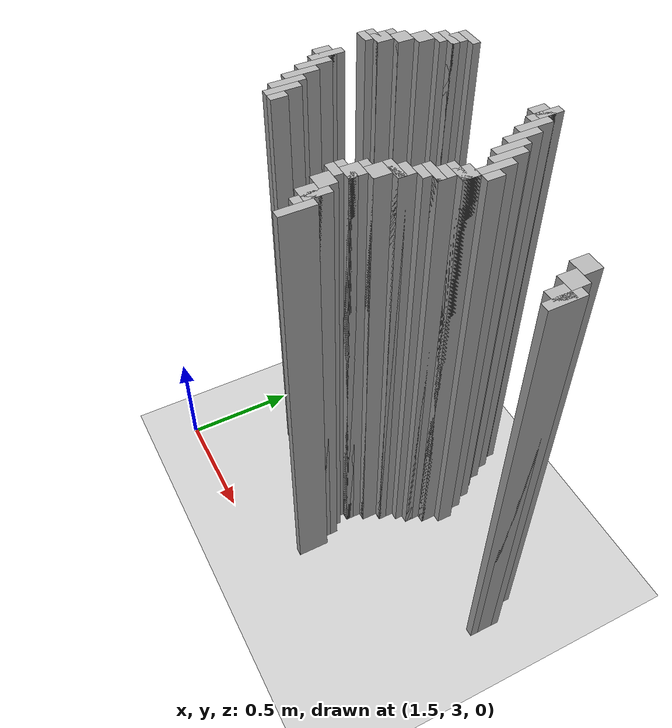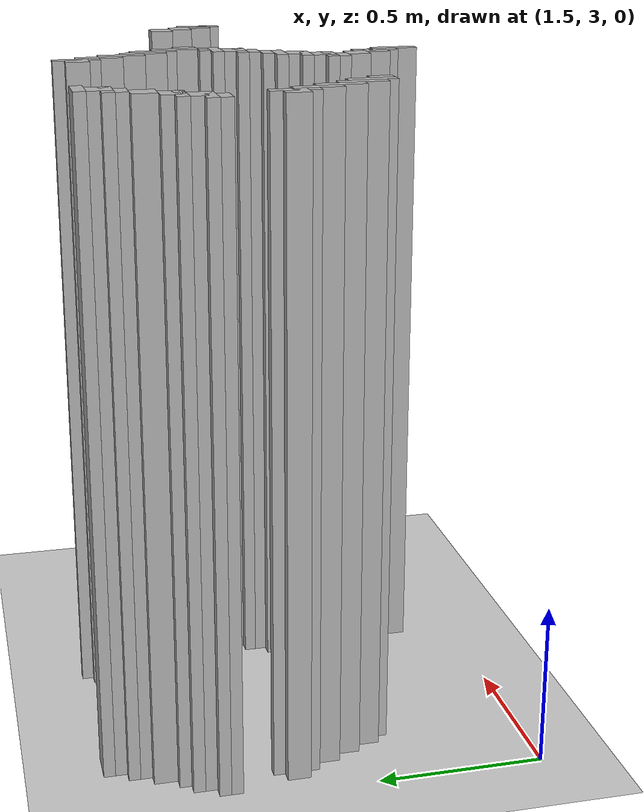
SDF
<sdf version="1.6">
 <world name="slam_world">
  <model name="ground_plane">
   <static>true</static>
   <link name="link">
    <collision name="collision">
     <geometry><plane><normal>0 0 1</normal><size>100 100</size></plane></geometry>
    </collision>
    <visual name="visual">
     <geometry><plane><normal>0 0 1</normal><size>100 100</size></plane></geometry>
     <material>
      <ambient>0.8 0.8 0.8 1</ambient>
      <diffuse>0.8 0.8 0.8 1</diffuse>
      <specular>0.8 0.8 0.8 1</specular>
     </material>
    </visual>
   </link>
  </model>
  <model name="wall_4300">
   <static>true</static>
   <pose>1.75754060324826 4.263341067285383 1.0 0 0 0</pose>
   <link name="link">
    <collision name="collision">
     <geometry><box><size>0.10440835266821345 0.03480278422273782 2.0</size></box></geometry>
    </collision>
    <visual name="visual">
     <geometry><box><size>0.10440835266821345 0.03480278422273782 2.0</size></box></geometry>
     <material><ambient>0.5 0.5 0.5 1</ambient><diffuse>0.7 0.7 0.7 1</diffuse></material>
    </visual>
   </link>
  </model>
  <model name="wall_4301">
   <static>true</static>
   <pose>2.3143851508120648 4.211136890951276 1.0 0 0 0</pose>
   <link name="link">
    <collision name="collision">
     <geometry><box><size>0.03480278422273782 0.13921113689095127 2.0</size></box></geometry>
    </collision>
    <visual name="visual">
     <geometry><box><size>0.03480278422273782 0.13921113689095127 2.0</size></box></geometry>
     <material><ambient>0.5 0.5 0.5 1</ambient><diffuse>0.7 0.7 0.7 1</diffuse></material>
    </visual>
   </link>
  </model>
  <model name="wall_4314">
   <static>true</static>
   <pose>1.740139211136891 4.211136890951276 1.0 0 0 0</pose>
   <link name="link">
    <collision name="collision">
     <geometry><box><size>0.06960556844547564 0.06960556844547564 2.0</size></box></geometry>
    </collision>
    <visual name="visual">
     <geometry><box><size>0.06960556844547564 0.06960556844547564 2.0</size></box></geometry>
     <material><ambient>0.5 0.5 0.5 1</ambient><diffuse>0.7 0.7 0.7 1</diffuse></material>
    </visual>
   </link>
  </model>
  <model name="wall_4315">
   <static>true</static>
   <pose>2.296983758700696 4.211136890951276 1.0 0 0 0</pose>
   <link name="link">
    <collision name="collision">
     <geometry><box><size>0.06960556844547564 0.06960556844547564 2.0</size></box></geometry>
    </collision>
    <visual name="visual">
     <geometry><box><size>0.06960556844547564 0.06960556844547564 2.0</size></box></geometry>
     <material><ambient>0.5 0.5 0.5 1</ambient><diffuse>0.7 0.7 0.7 1</diffuse></material>
    </visual>
   </link>
  </model>
  <model name="wall_4329">
   <static>true</static>
   <pose>1.722737819025522 4.193735498839907 1.0 0 0 0</pose>
   <link name="link">
    <collision name="collision">
     <geometry><box><size>0.10440835266821345 0.03480278422273782 2.0</size></box></geometry>
    </collision>
    <visual name="visual">
     <geometry><box><size>0.10440835266821345 0.03480278422273782 2.0</size></box></geometry>
     <material><ambient>0.5 0.5 0.5 1</ambient><diffuse>0.7 0.7 0.7 1</diffuse></material>
    </visual>
   </link>
  </model>
  <model name="wall_4330">
   <static>true</static>
   <pose>2.3491879350348026 4.1415313225058 1.0 0 0 0</pose>
   <link name="link">
    <collision name="collision">
     <geometry><box><size>0.03480278422273782 0.13921113689095127 2.0</size></box></geometry>
    </collision>
    <visual name="visual">
     <geometry><box><size>0.03480278422273782 0.13921113689095127 2.0</size></box></geometry>
     <material><ambient>0.5 0.5 0.5 1</ambient><diffuse>0.7 0.7 0.7 1</diffuse></material>
    </visual>
   </link>
  </model>
  <model name="wall_4343">
   <static>true</static>
   <pose>1.705336426914153 4.158932714617169 1.0 0 0 0</pose>
   <link name="link">
    <collision name="collision">
     <geometry><box><size>0.06960556844547564 0.03480278422273782 2.0</size></box></geometry>
    </collision>
    <visual name="visual">
     <geometry><box><size>0.06960556844547564 0.03480278422273782 2.0</size></box></geometry>
     <material><ambient>0.5 0.5 0.5 1</ambient><diffuse>0.7 0.7 0.7 1</diffuse></material>
    </visual>
   </link>
  </model>
  <model name="wall_4353">
   <static>true</static>
   <pose>1.6705336426914152 4.106728538283062 1.0 0 0 0</pose>
   <link name="link">
    <collision name="collision">
     <geometry><box><size>0.06960556844547564 0.06960556844547564 2.0</size></box></geometry>
    </collision>
    <visual name="visual">
     <geometry><box><size>0.06960556844547564 0.06960556844547564 2.0</size></box></geometry>
     <material><ambient>0.5 0.5 0.5 1</ambient><diffuse>0.7 0.7 0.7 1</diffuse></material>
    </visual>
   </link>
  </model>
  <model name="wall_4354">
   <static>true</static>
   <pose>2.3839907192575405 4.071925754060325 1.0 0 0 0</pose>
   <link name="link">
    <collision name="collision">
     <geometry><box><size>0.03480278422273782 0.13921113689095127 2.0</size></box></geometry>
    </collision>
    <visual name="visual">
     <geometry><box><size>0.03480278422273782 0.13921113689095127 2.0</size></box></geometry>
     <material><ambient>0.5 0.5 0.5 1</ambient><diffuse>0.7 0.7 0.7 1</diffuse></material>
    </visual>
   </link>
  </model>
  <model name="wall_4368">
   <static>true</static>
   <pose>1.6357308584686774 4.037122969837587 1.0 0 0 0</pose>
   <link name="link">
    <collision name="collision">
     <geometry><box><size>0.06960556844547564 0.06960556844547564 2.0</size></box></geometry>
    </collision>
    <visual name="visual">
     <geometry><box><size>0.06960556844547564 0.06960556844547564 2.0</size></box></geometry>
     <material><ambient>0.5 0.5 0.5 1</ambient><diffuse>0.7 0.7 0.7 1</diffuse></material>
    </visual>
   </link>
  </model>
  <model name="wall_4369">
   <static>true</static>
   <pose>2.4187935034802783 4.002320185614849 1.0 0 0 0</pose>
   <link name="link">
    <collision name="collision">
     <geometry><box><size>0.03480278422273782 0.13921113689095127 2.0</size></box></geometry>
    </collision>
    <visual name="visual">
     <geometry><box><size>0.03480278422273782 0.13921113689095127 2.0</size></box></geometry>
     <material><ambient>0.5 0.5 0.5 1</ambient><diffuse>0.7 0.7 0.7 1</diffuse></material>
    </visual>
   </link>
  </model>
  <model name="wall_4383">
   <static>true</static>
   <pose>1.6183294663573085 4.019721577726218 1.0 0 0 0</pose>
   <link name="link">
    <collision name="collision">
     <geometry><box><size>0.10440835266821345 0.03480278422273782 2.0</size></box></geometry>
    </collision>
    <visual name="visual">
     <geometry><box><size>0.10440835266821345 0.03480278422273782 2.0</size></box></geometry>
     <material><ambient>0.5 0.5 0.5 1</ambient><diffuse>0.7 0.7 0.7 1</diffuse></material>
    </visual>
   </link>
  </model>
  <model name="wall_4384">
   <static>true</static>
   <pose>2.453596287703016 3.967517401392111 1.0 0 0 0</pose>
   <link name="link">
    <collision name="collision">
     <geometry><box><size>0.03480278422273782 0.13921113689095127 2.0</size></box></geometry>
    </collision>
    <visual name="visual">
     <geometry><box><size>0.03480278422273782 0.13921113689095127 2.0</size></box></geometry>
     <material><ambient>0.5 0.5 0.5 1</ambient><diffuse>0.7 0.7 0.7 1</diffuse></material>
    </visual>
   </link>
  </model>
  <model name="wall_4397">
   <static>true</static>
   <pose>1.6009280742459395 3.967517401392111 1.0 0 0 0</pose>
   <link name="link">
    <collision name="collision">
     <geometry><box><size>0.06960556844547564 0.06960556844547564 2.0</size></box></geometry>
    </collision>
    <visual name="visual">
     <geometry><box><size>0.06960556844547564 0.06960556844547564 2.0</size></box></geometry>
     <material><ambient>0.5 0.5 0.5 1</ambient><diffuse>0.7 0.7 0.7 1</diffuse></material>
    </visual>
   </link>
  </model>
  <model name="wall_4406">
   <static>true</static>
   <pose>1.5835266821345706 3.9501160092807424 1.0 0 0 0</pose>
   <link name="link">
    <collision name="collision">
     <geometry><box><size>0.10440835266821345 0.03480278422273782 2.0</size></box></geometry>
    </collision>
    <visual name="visual">
     <geometry><box><size>0.10440835266821345 0.03480278422273782 2.0</size></box></geometry>
     <material><ambient>0.5 0.5 0.5 1</ambient><diffuse>0.7 0.7 0.7 1</diffuse></material>
    </visual>
   </link>
  </model>
  <model name="wall_4407">
   <static>true</static>
   <pose>2.488399071925754 3.863109048723898 1.0 0 0 0</pose>
   <link name="link">
    <collision name="collision">
     <geometry><box><size>0.03480278422273782 0.2088167053364269 2.0</size></box></geometry>
    </collision>
    <visual name="visual">
     <geometry><box><size>0.03480278422273782 0.2088167053364269 2.0</size></box></geometry>
     <material><ambient>0.5 0.5 0.5 1</ambient><diffuse>0.7 0.7 0.7 1</diffuse></material>
    </visual>
   </link>
  </model>
  <model name="wall_4420">
   <static>true</static>
   <pose>1.5661252900232019 3.9153132250580045 1.0 0 0 0</pose>
   <link name="link">
    <collision name="collision">
     <geometry><box><size>0.06960556844547564 0.03480278422273782 2.0</size></box></geometry>
    </collision>
    <visual name="visual">
     <geometry><box><size>0.06960556844547564 0.03480278422273782 2.0</size></box></geometry>
     <material><ambient>0.5 0.5 0.5 1</ambient><diffuse>0.7 0.7 0.7 1</diffuse></material>
    </visual>
   </link>
  </model>
  <model name="wall_4430">
   <static>true</static>
   <pose>2.523201856148492 3.863109048723898 1.0 0 0 0</pose>
   <link name="link">
    <collision name="collision">
     <geometry><box><size>0.03480278422273782 0.06960556844547564 2.0</size></box></geometry>
    </collision>
    <visual name="visual">
     <geometry><box><size>0.03480278422273782 0.06960556844547564 2.0</size></box></geometry>
     <material><ambient>0.5 0.5 0.5 1</ambient><diffuse>0.7 0.7 0.7 1</diffuse></material>
    </visual>
   </link>
  </model>
  <model name="wall_4431">
   <static>true</static>
   <pose>2.9930394431554523 3.863109048723898 1.0 0 0 0</pose>
   <link name="link">
    <collision name="collision">
     <geometry><box><size>0.06960556844547564 0.06960556844547564 2.0</size></box></geometry>
    </collision>
    <visual name="visual">
     <geometry><box><size>0.06960556844547564 0.06960556844547564 2.0</size></box></geometry>
     <material><ambient>0.5 0.5 0.5 1</ambient><diffuse>0.7 0.7 0.7 1</diffuse></material>
    </visual>
   </link>
  </model>
  <model name="wall_4446">
   <static>true</static>
   <pose>2.470997679814385 3.793503480278422 1.0 0 0 0</pose>
   <link name="link">
    <collision name="collision">
     <geometry><box><size>0.06960556844547564 0.06960556844547564 2.0</size></box></geometry>
    </collision>
    <visual name="visual">
     <geometry><box><size>0.06960556844547564 0.06960556844547564 2.0</size></box></geometry>
     <material><ambient>0.5 0.5 0.5 1</ambient><diffuse>0.7 0.7 0.7 1</diffuse></material>
    </visual>
   </link>
  </model>
  <model name="wall_4447">
   <static>true</static>
   <pose>3.02784222737819 3.793503480278422 1.0 0 0 0</pose>
   <link name="link">
    <collision name="collision">
     <geometry><box><size>0.06960556844547564 0.06960556844547564 2.0</size></box></geometry>
    </collision>
    <visual name="visual">
     <geometry><box><size>0.06960556844547564 0.06960556844547564 2.0</size></box></geometry>
     <material><ambient>0.5 0.5 0.5 1</ambient><diffuse>0.7 0.7 0.7 1</diffuse></material>
    </visual>
   </link>
  </model>
  <model name="wall_4462">
   <static>true</static>
   <pose>1.6183294663573085 3.7238979118329465 1.0 0 0 0</pose>
   <link name="link">
    <collision name="collision">
     <geometry><box><size>0.03480278422273782 0.13921113689095127 2.0</size></box></geometry>
    </collision>
    <visual name="visual">
     <geometry><box><size>0.03480278422273782 0.13921113689095127 2.0</size></box></geometry>
     <material><ambient>0.5 0.5 0.5 1</ambient><diffuse>0.7 0.7 0.7 1</diffuse></material>
    </visual>
   </link>
  </model>
  <model name="wall_4463">
   <static>true</static>
   <pose>2.453596287703016 3.776102088167053 1.0 0 0 0</pose>
   <link name="link">
    <collision name="collision">
     <geometry><box><size>0.10440835266821345 0.03480278422273782 2.0</size></box></geometry>
    </collision>
    <visual name="visual">
     <geometry><box><size>0.10440835266821345 0.03480278422273782 2.0</size></box></geometry>
     <material><ambient>0.5 0.5 0.5 1</ambient><diffuse>0.7 0.7 0.7 1</diffuse></material>
    </visual>
   </link>
  </model>
  <model name="wall_4464">
   <static>true</static>
   <pose>3.0800464037122968 3.7238979118329465 1.0 0 0 0</pose>
   <link name="link">
    <collision name="collision">
     <geometry><box><size>0.03480278422273782 0.13921113689095127 2.0</size></box></geometry>
    </collision>
    <visual name="visual">
     <geometry><box><size>0.03480278422273782 0.13921113689095127 2.0</size></box></geometry>
     <material><ambient>0.5 0.5 0.5 1</ambient><diffuse>0.7 0.7 0.7 1</diffuse></material>
    </visual>
   </link>
  </model>
  <model name="wall_4479">
   <static>true</static>
   <pose>1.6009280742459395 3.7238979118329465 1.0 0 0 0</pose>
   <link name="link">
    <collision name="collision">
     <geometry><box><size>0.06960556844547564 0.06960556844547564 2.0</size></box></geometry>
    </collision>
    <visual name="visual">
     <geometry><box><size>0.06960556844547564 0.06960556844547564 2.0</size></box></geometry>
     <material><ambient>0.5 0.5 0.5 1</ambient><diffuse>0.7 0.7 0.7 1</diffuse></material>
    </visual>
   </link>
  </model>
  <model name="wall_4480">
   <static>true</static>
   <pose>2.436194895591647 3.7238979118329465 1.0 0 0 0</pose>
   <link name="link">
    <collision name="collision">
     <geometry><box><size>0.06960556844547564 0.06960556844547564 2.0</size></box></geometry>
    </collision>
    <visual name="visual">
     <geometry><box><size>0.06960556844547564 0.06960556844547564 2.0</size></box></geometry>
     <material><ambient>0.5 0.5 0.5 1</ambient><diffuse>0.7 0.7 0.7 1</diffuse></material>
    </visual>
   </link>
  </model>
  <model name="wall_4481">
   <static>true</static>
   <pose>3.062645011600928 3.7238979118329465 1.0 0 0 0</pose>
   <link name="link">
    <collision name="collision">
     <geometry><box><size>0.06960556844547564 0.06960556844547564 2.0</size></box></geometry>
    </collision>
    <visual name="visual">
     <geometry><box><size>0.06960556844547564 0.06960556844547564 2.0</size></box></geometry>
     <material><ambient>0.5 0.5 0.5 1</ambient><diffuse>0.7 0.7 0.7 1</diffuse></material>
    </visual>
   </link>
  </model>
  <model name="wall_4496">
   <static>true</static>
   <pose>1.6531322505800463 3.6542923433874708 1.0 0 0 0</pose>
   <link name="link">
    <collision name="collision">
     <geometry><box><size>0.03480278422273782 0.13921113689095127 2.0</size></box></geometry>
    </collision>
    <visual name="visual">
     <geometry><box><size>0.03480278422273782 0.13921113689095127 2.0</size></box></geometry>
     <material><ambient>0.5 0.5 0.5 1</ambient><diffuse>0.7 0.7 0.7 1</diffuse></material>
    </visual>
   </link>
  </model>
  <model name="wall_4497">
   <static>true</static>
   <pose>2.4187935034802783 3.706496519721578 1.0 0 0 0</pose>
   <link name="link">
    <collision name="collision">
     <geometry><box><size>0.10440835266821345 0.03480278422273782 2.0</size></box></geometry>
    </collision>
    <visual name="visual">
     <geometry><box><size>0.10440835266821345 0.03480278422273782 2.0</size></box></geometry>
     <material><ambient>0.5 0.5 0.5 1</ambient><diffuse>0.7 0.7 0.7 1</diffuse></material>
    </visual>
   </link>
  </model>
  <model name="wall_4512">
   <static>true</static>
   <pose>2.4013921113689096 3.67169373549884 1.0 0 0 0</pose>
   <link name="link">
    <collision name="collision">
     <geometry><box><size>0.06960556844547564 0.03480278422273782 2.0</size></box></geometry>
    </collision>
    <visual name="visual">
     <geometry><box><size>0.06960556844547564 0.03480278422273782 2.0</size></box></geometry>
     <material><ambient>0.5 0.5 0.5 1</ambient><diffuse>0.7 0.7 0.7 1</diffuse></material>
    </visual>
   </link>
  </model>
  <model name="wall_4520">
   <static>true</static>
   <pose>1.6879350348027842 3.584686774941995 1.0 0 0 0</pose>
   <link name="link">
    <collision name="collision">
     <geometry><box><size>0.03480278422273782 0.13921113689095127 2.0</size></box></geometry>
    </collision>
    <visual name="visual">
     <geometry><box><size>0.03480278422273782 0.13921113689095127 2.0</size></box></geometry>
     <material><ambient>0.5 0.5 0.5 1</ambient><diffuse>0.7 0.7 0.7 1</diffuse></material>
    </visual>
   </link>
  </model>
  <model name="wall_4521">
   <static>true</static>
   <pose>2.3665893271461718 3.619489559164733 1.0 0 0 0</pose>
   <link name="link">
    <collision name="collision">
     <geometry><box><size>0.06960556844547564 0.06960556844547564 2.0</size></box></geometry>
    </collision>
    <visual name="visual">
     <geometry><box><size>0.06960556844547564 0.06960556844547564 2.0</size></box></geometry>
     <material><ambient>0.5 0.5 0.5 1</ambient><diffuse>0.7 0.7 0.7 1</diffuse></material>
    </visual>
   </link>
  </model>
  <model name="wall_4536">
   <static>true</static>
   <pose>2.3491879350348026 3.602088167053364 1.0 0 0 0</pose>
   <link name="link">
    <collision name="collision">
     <geometry><box><size>0.10440835266821345 0.03480278422273782 2.0</size></box></geometry>
    </collision>
    <visual name="visual">
     <geometry><box><size>0.10440835266821345 0.03480278422273782 2.0</size></box></geometry>
     <material><ambient>0.5 0.5 0.5 1</ambient><diffuse>0.7 0.7 0.7 1</diffuse></material>
    </visual>
   </link>
  </model>
  <model name="wall_4544">
   <static>true</static>
   <pose>1.722737819025522 3.51508120649652 1.0 0 0 0</pose>
   <link name="link">
    <collision name="collision">
     <geometry><box><size>0.03480278422273782 0.13921113689095127 2.0</size></box></geometry>
    </collision>
    <visual name="visual">
     <geometry><box><size>0.03480278422273782 0.13921113689095127 2.0</size></box></geometry>
     <material><ambient>0.5 0.5 0.5 1</ambient><diffuse>0.7 0.7 0.7 1</diffuse></material>
    </visual>
   </link>
  </model>
  <model name="wall_4545">
   <static>true</static>
   <pose>2.331786542923434 3.549883990719257 1.0 0 0 0</pose>
   <link name="link">
    <collision name="collision">
     <geometry><box><size>0.06960556844547564 0.06960556844547564 2.0</size></box></geometry>
    </collision>
    <visual name="visual">
     <geometry><box><size>0.06960556844547564 0.06960556844547564 2.0</size></box></geometry>
     <material><ambient>0.5 0.5 0.5 1</ambient><diffuse>0.7 0.7 0.7 1</diffuse></material>
    </visual>
   </link>
  </model>
  <model name="wall_4561">
   <static>true</static>
   <pose>1.75754060324826 3.480278422273782 1.0 0 0 0</pose>
   <link name="link">
    <collision name="collision">
     <geometry><box><size>0.03480278422273782 0.13921113689095127 2.0</size></box></geometry>
    </collision>
    <visual name="visual">
     <geometry><box><size>0.03480278422273782 0.13921113689095127 2.0</size></box></geometry>
     <material><ambient>0.5 0.5 0.5 1</ambient><diffuse>0.7 0.7 0.7 1</diffuse></material>
    </visual>
   </link>
  </model>
  <model name="wall_4562">
   <static>true</static>
   <pose>2.3143851508120648 3.5324825986078885 1.0 0 0 0</pose>
   <link name="link">
    <collision name="collision">
     <geometry><box><size>0.10440835266821345 0.03480278422273782 2.0</size></box></geometry>
    </collision>
    <visual name="visual">
     <geometry><box><size>0.10440835266821345 0.03480278422273782 2.0</size></box></geometry>
     <material><ambient>0.5 0.5 0.5 1</ambient><diffuse>0.7 0.7 0.7 1</diffuse></material>
    </visual>
   </link>
  </model>
  <model name="wall_4577">
   <static>true</static>
   <pose>2.296983758700696 3.480278422273782 1.0 0 0 0</pose>
   <link name="link">
    <collision name="collision">
     <geometry><box><size>0.06960556844547564 0.06960556844547564 2.0</size></box></geometry>
    </collision>
    <visual name="visual">
     <geometry><box><size>0.06960556844547564 0.06960556844547564 2.0</size></box></geometry>
     <material><ambient>0.5 0.5 0.5 1</ambient><diffuse>0.7 0.7 0.7 1</diffuse></material>
    </visual>
   </link>
  </model>
  <model name="wall_4585">
   <static>true</static>
   <pose>1.7923433874709975 3.445475638051044 1.0 0 0 0</pose>
   <link name="link">
    <collision name="collision">
     <geometry><box><size>0.03480278422273782 0.06960556844547564 2.0</size></box></geometry>
    </collision>
    <visual name="visual">
     <geometry><box><size>0.03480278422273782 0.06960556844547564 2.0</size></box></geometry>
     <material><ambient>0.5 0.5 0.5 1</ambient><diffuse>0.7 0.7 0.7 1</diffuse></material>
    </visual>
   </link>
  </model>
  <model name="wall_4586">
   <static>true</static>
   <pose>2.279582366589327 3.4628770301624128 1.0 0 0 0</pose>
   <link name="link">
    <collision name="collision">
     <geometry><box><size>0.10440835266821345 0.03480278422273782 2.0</size></box></geometry>
    </collision>
    <visual name="visual">
     <geometry><box><size>0.10440835266821345 0.03480278422273782 2.0</size></box></geometry>
     <material><ambient>0.5 0.5 0.5 1</ambient><diffuse>0.7 0.7 0.7 1</diffuse></material>
    </visual>
   </link>
  </model>
  <model name="wall_4600">
   <static>true</static>
   <pose>2.262180974477958 3.428074245939675 1.0 0 0 0</pose>
   <link name="link">
    <collision name="collision">
     <geometry><box><size>0.06960556844547564 0.03480278422273782 2.0</size></box></geometry>
    </collision>
    <visual name="visual">
     <geometry><box><size>0.06960556844547564 0.03480278422273782 2.0</size></box></geometry>
     <material><ambient>0.5 0.5 0.5 1</ambient><diffuse>0.7 0.7 0.7 1</diffuse></material>
    </visual>
   </link>
  </model>
  <model name="wall_4608">
   <static>true</static>
   <pose>2.296983758700696 3.3758700696055683 1.0 0 0 0</pose>
   <link name="link">
    <collision name="collision">
     <geometry><box><size>0.06960556844547564 0.06960556844547564 2.0</size></box></geometry>
    </collision>
    <visual name="visual">
     <geometry><box><size>0.06960556844547564 0.06960556844547564 2.0</size></box></geometry>
     <material><ambient>0.5 0.5 0.5 1</ambient><diffuse>0.7 0.7 0.7 1</diffuse></material>
    </visual>
   </link>
  </model>
  <model name="wall_4621">
   <static>true</static>
   <pose>2.3491879350348026 3.3062645011600926 1.0 0 0 0</pose>
   <link name="link">
    <collision name="collision">
     <geometry><box><size>0.03480278422273782 0.13921113689095127 2.0</size></box></geometry>
    </collision>
    <visual name="visual">
     <geometry><box><size>0.03480278422273782 0.13921113689095127 2.0</size></box></geometry>
     <material><ambient>0.5 0.5 0.5 1</ambient><diffuse>0.7 0.7 0.7 1</diffuse></material>
    </visual>
   </link>
  </model>
  <model name="wall_4634">
   <static>true</static>
   <pose>2.331786542923434 3.3062645011600926 1.0 0 0 0</pose>
   <link name="link">
    <collision name="collision">
     <geometry><box><size>0.06960556844547564 0.06960556844547564 2.0</size></box></geometry>
    </collision>
    <visual name="visual">
     <geometry><box><size>0.06960556844547564 0.06960556844547564 2.0</size></box></geometry>
     <material><ambient>0.5 0.5 0.5 1</ambient><diffuse>0.7 0.7 0.7 1</diffuse></material>
    </visual>
   </link>
  </model>
  <model name="wall_4647">
   <static>true</static>
   <pose>2.3839907192575405 3.236658932714617 1.0 0 0 0</pose>
   <link name="link">
    <collision name="collision">
     <geometry><box><size>0.03480278422273782 0.13921113689095127 2.0</size></box></geometry>
    </collision>
    <visual name="visual">
     <geometry><box><size>0.03480278422273782 0.13921113689095127 2.0</size></box></geometry>
     <material><ambient>0.5 0.5 0.5 1</ambient><diffuse>0.7 0.7 0.7 1</diffuse></material>
    </visual>
   </link>
  </model>
 </world>
</sdf>
